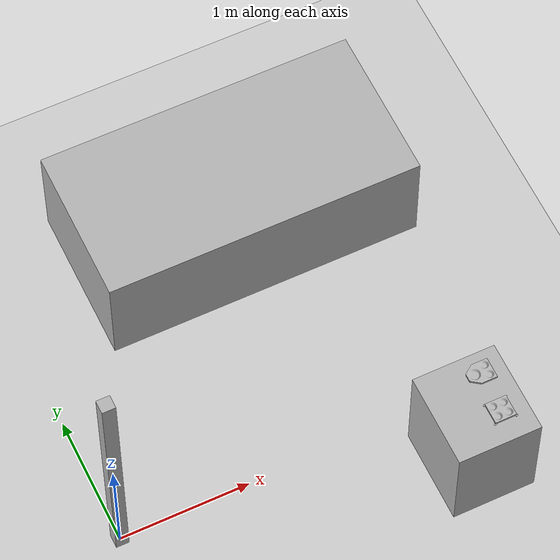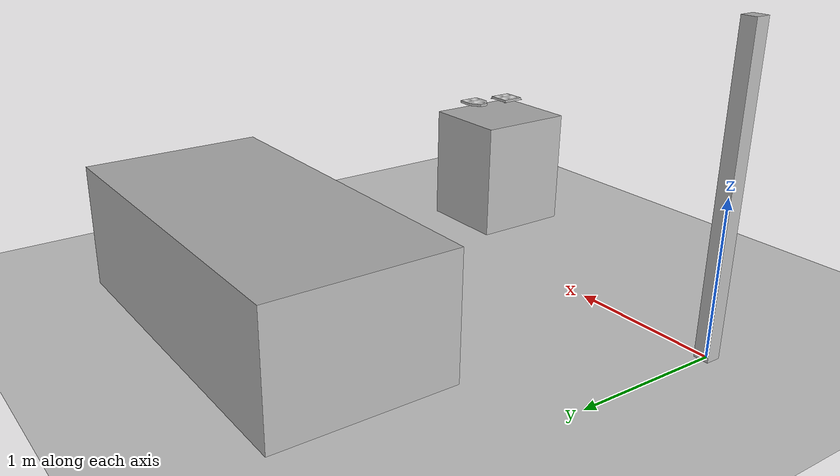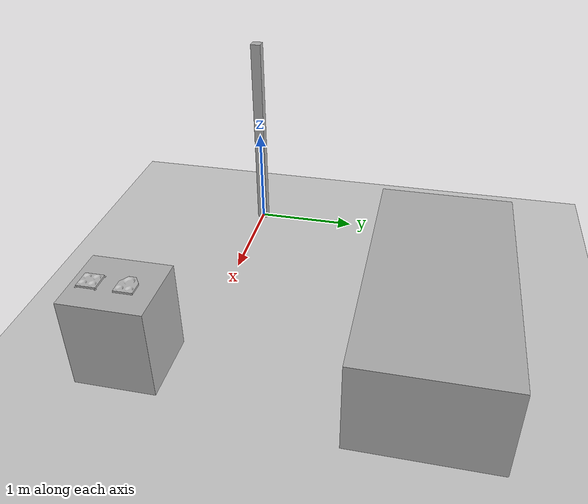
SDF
<sdf version="1.10">
 <world name="empty">
  <physics name="1ms" type="ignored">
   <max_step_size>0.001</max_step_size>
   <real_time_factor>1</real_time_factor>
   <real_time_update_rate>1000</real_time_update_rate>
  </physics>
  <plugin name="gz::sim::systems::Physics" filename="gz-sim-physics-system"/>
  <plugin name="gz::sim::systems::UserCommands" filename="gz-sim-user-commands-system"/>
  <plugin name="gz::sim::systems::SceneBroadcaster" filename="gz-sim-scene-broadcaster-system"/>
  <plugin name="gz::sim::systems::Contact" filename="gz-sim-contact-system"/>
  <gravity>0 0 -9.8000000000000007</gravity>
  <magnetic_field>5.5644999999999998e-06 2.2875799999999999e-05 -4.2388400000000002e-05</magnetic_field>
  <atmosphere type="adiabatic"/>
  <scene>
   <ambient>0.400000006 0.400000006 0.400000006 1</ambient>
   <background>0.699999988 0.699999988 0.699999988 1</background>
   <shadows>true</shadows>
  </scene>
  <model name="ground_plane">
   <static>true</static>
   <link name="link">
    <collision name="collision">
     <geometry><plane><normal>0 0 1</normal><size>100 100</size></plane></geometry>
    </collision>
    <visual name="visual">
     <geometry><plane><normal>0 0 1</normal><size>100 100</size></plane></geometry>
     <material>
      <ambient>0.800000012 0.800000012 0.800000012 1</ambient>
      <diffuse>0.800000012 0.800000012 0.800000012 1</diffuse>
      <specular>0.800000012 0.800000012 0.800000012 1</specular>
     </material>
    </visual>
    <inertial>
     <mass>1</mass>
     <inertia><ixx>1</ixx><ixy>0</ixy><ixz>0</ixz><iyy>1</iyy><iyz>0</iyz><izz>1</izz></inertia>
    </inertial>
   </link>
  </model>
  <model name="origin_marker">
   <pose>0 0 1 0 0 0</pose>
   <link name="box_link">
    <inertial>
     <inertia><ixx>0.16666</ixx><ixy>0</ixy><ixz>0</ixz><iyy>0.16666</iyy><iyz>0</iyz><izz>0.16666</izz></inertia>
     <mass>1</mass>
    </inertial>
    <collision name="box_collision"><geometry><box><size>0.1 0.1 2</size></box></geometry></collision>
    <visual name="box_visual">
     <geometry><box><size>0.1 0.1 2</size></box></geometry>
     <material>
      <ambient>0.300000012 0.300000012 0.300000012 1</ambient>
      <diffuse>0.699999988 0.699999988 0.699999988 1</diffuse>
      <specular>1 1 1 1</specular>
     </material>
    </visual>
   </link>
   <static>false</static>
  </model>
  <model name="ur_cart">
   <pose>2.5 -0.5 0.4191 0 0 0</pose>
   <link name="box_link">
    <inertial>
     <inertia><ixx>0.16666</ixx><ixy>0</ixy><ixz>0</ixz><iyy>0.16666</iyy><iyz>0</iyz><izz>0.16666</izz></inertia>
     <mass>1</mass>
    </inertial>
    <collision name="box_collision"><geometry><box><size>0.635 0.7112 0.8382</size></box></geometry></collision>
    <visual name="box_visual">
     <geometry><box><size>0.635 0.7112 0.8382</size></box></geometry>
     <material>
      <ambient>0.300000012 0.300000012 0.300000012 1</ambient>
      <diffuse>0.699999988 0.699999988 0.699999988 1</diffuse>
      <specular>1 1 1 1</specular>
     </material>
    </visual>
   </link>
   <static>false</static>
  </model>
  <model name="optical_table">
   <pose>1.8 2 0.4191 0 0 0</pose>
   <link name="box_link">
    <inertial>
     <inertia><ixx>0.16666</ixx><ixy>0</ixy><ixz>0</ixz><iyy>0.16666</iyy><iyz>0</iyz><izz>0.16666</izz></inertia>
     <mass>1</mass>
    </inertial>
    <collision name="box_collision"><geometry><box><size>2.4384 1.2192 0.8382</size></box></geometry></collision>
    <visual name="box_visual">
     <geometry><box><size>2.4384 1.2192 0.8382</size></box></geometry>
     <material>
      <ambient>0.300000012 0.300000012 0.300000012 1</ambient>
      <diffuse>0.699999988 0.699999988 0.699999988 1</diffuse>
      <specular>1 1 1 1</specular>
     </material>
    </visual>
   </link>
   <static>false</static>
  </model>
  <model name="sku_kit_m2l1_vessel15">
   <static>1</static>
   <link name="link1">
    <collision name="collision1">
     <geometry>
      <mesh>
       <scale>0.0254 0.0254 0.0254</scale>
       <uri>model://gear_support/meshes/newKitTray_1Large_2Medium_Centered_ZeroZmin.stl</uri>
      </mesh>
     </geometry>
    </collision>
    <visual name="visual1">
     <geometry>
      <mesh>
       <scale>0.0254 0.0254 0.0254</scale>
       <uri>model://gear_support/meshes/newKitTray_1Large_2Medium_Centered_ZeroZmin.stl</uri>
      </mesh>
     </geometry>
     <material><name>Gazebo/Wood</name></material>
    </visual>
    <inertial>
     <mass>12</mass>
     <inertia>
      <ixx>8.54977215e+01</ixx>
      <ixy>5.18963385e-03</ixy>
      <ixz>-6.49974690e-05</ixz>
      <iyy>7.01009727e+01</iyy>
      <iyz>-7.13569718e-02</iyz>
      <izz>1.54056453e+02</izz>
     </inertia>
    </inertial>
   </link>
   <pose>2.6 -0.34 0.92 0 0 -1.57</pose>
  </model>
  <model name="sku_medium_gear_vessel16">
   <pose>2.6 -0.65 0.92 0 0 0</pose>
   <static>1</static>
   <link name="link1">
    <collision name="collision1">
     <geometry>
      <mesh>
       <scale>0.0254 0.0254 0.0254</scale>
       <uri>model://gear_support/meshes/medium_gear_holder_centered.stl</uri>
      </mesh>
     </geometry>
    </collision>
    <visual name="visual1">
     <geometry>
      <mesh>
       <scale>0.0254 0.0254 0.0254</scale>
       <uri>model://gear_support/meshes/medium_gear_holder_centered.stl</uri>
      </mesh>
     </geometry>
     <material><name>Gazebo/SkyBlue</name></material>
    </visual>
    <inertial>
     <mass>12</mass>
     <inertia>
      <ixx>1.91071229e+01</ixx>
      <ixy>2.84737024e-07</ixy>
      <ixz>2.16999641e-07</ixz>
      <iyy>1.91071221e+01</iyy>
      <iyz>-1.18455844e-07</iyz>
      <izz>3.74139992e+01</izz>
     </inertia>
    </inertial>
   </link>
  </model>
  <light name="sun" type="directional">
   <pose>0 0 10 0 0 0</pose>
   <intensity>1</intensity>
   <direction>-0.5 0.10000000000000001 -0.90000000000000002</direction>
   <diffuse>0.800000012 0.800000012 0.800000012 1</diffuse>
   <specular>0.200000003 0.200000003 0.200000003 1</specular>
   <attenuation>
    <range>1000</range>
    <linear>0.0099999997764825821</linear>
    <constant>0.89999997615814209</constant>
    <quadratic>0.0010000000474974513</quadratic>
   </attenuation>
   <spot><inner_angle>0</inner_angle><outer_angle>0</outer_angle><falloff>0</falloff></spot>
  </light>
 </world>
</sdf>
